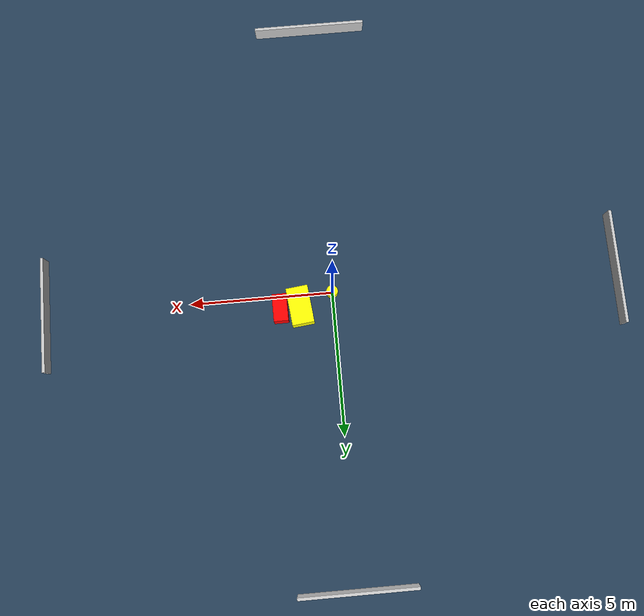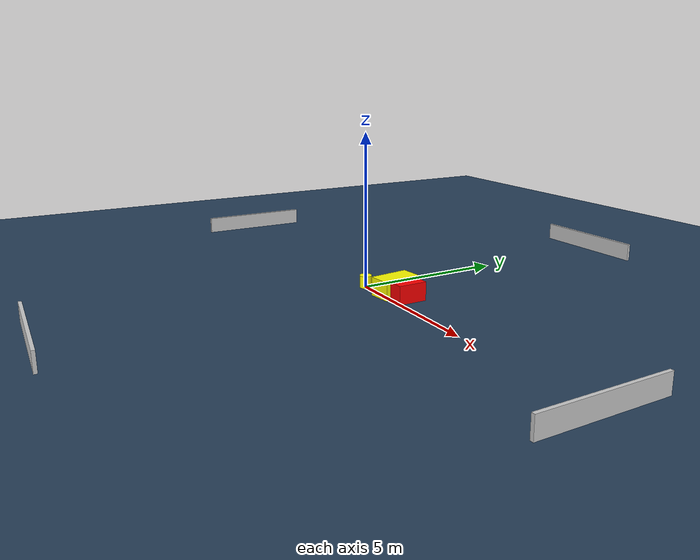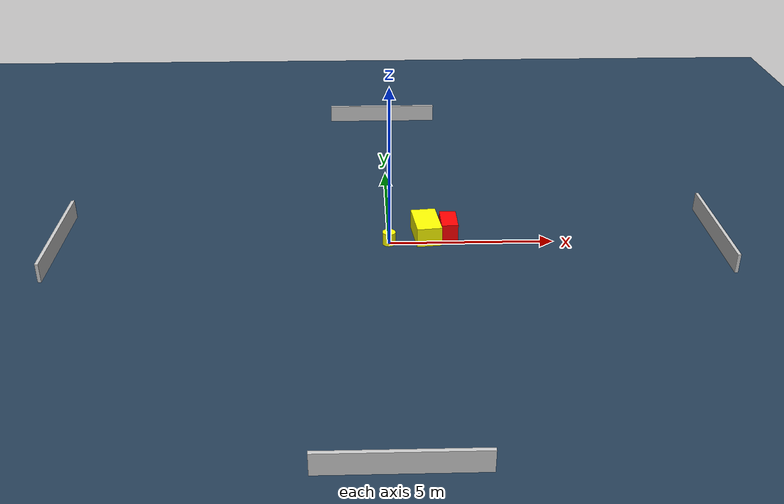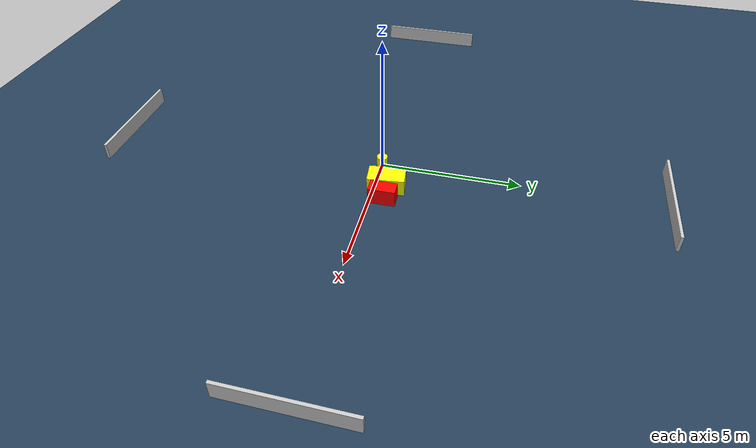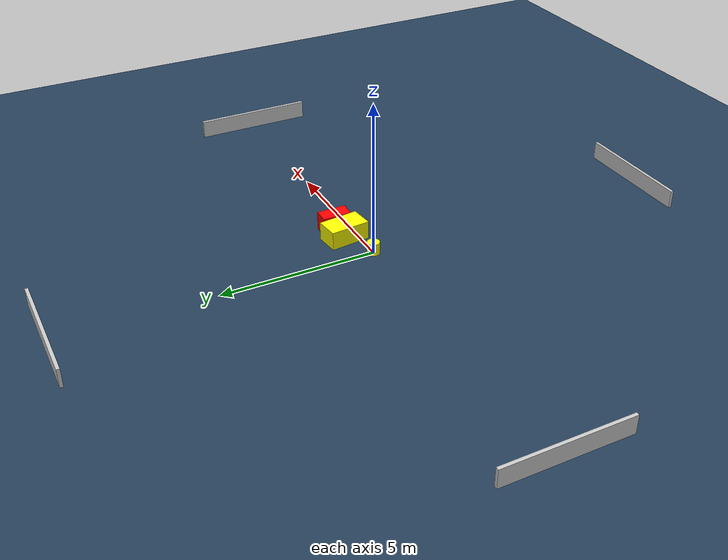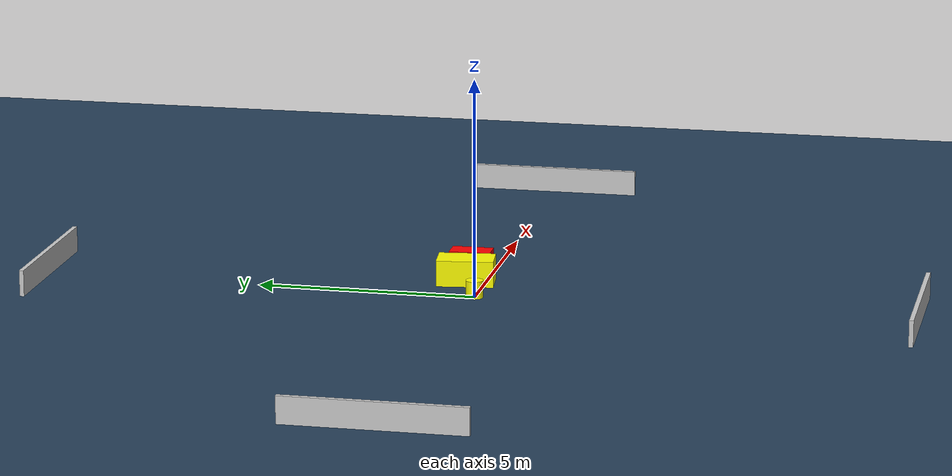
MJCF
<?xml version="1.0" ?>
<mujoco model="generated_environment">
  <option timestep="0.01" integrator="RK4" cone="elliptic"/>
  <default>
    <geom density="1"/>
  </default>
  <asset>
    <texture builtin="gradient" height="3072" name="skybox" rgb1="0.3 0.5 0.7" rgb2="0 0 0" type="skybox" width="512"/>
    <texture builtin="checker" height="300" name="groundplane" rgb1="0.2 0.3 0.4" rgb2="0.1 0.2 0.3" type="2d" width="300"/>
    <material name="groundplane" reflectance="0.2" texrepeat="5 5" texture="groundplane"/>
  </asset>
  <worldbody>
    <light dir="0 0 -1" directional="true" pos="0 0 1.5"/>
    <geom condim="3" friction="0.5 0.005 0.001" material="groundplane" name="floor" pos="0 0 0" size="0 0 0.05" type="plane"/>
    <body name="walls">
      <geom name="wall_1" condim="4" pos="-10.0 0.0 0.3" rgba="0.800000011920929 0.800000011920929 0.800000011920929 1.0" size="0.05 2.0 0.3" type="box"/>
      <geom name="wall_2" condim="4" pos="10.0 0.0 0.3" rgba="0.800000011920929 0.800000011920929 0.800000011920929 1.0" size="0.05 2.0 0.3" type="box"/>
      <geom name="wall_3" condim="4" pos="0.0 -10.0 0.3" rgba="0.800000011920929 0.800000011920929 0.800000011920929 1.0" size="2.0 0.05 0.3" type="box"/>
      <geom name="wall_4" condim="4" pos="0.0 10.0 0.3" rgba="0.800000011920929 0.800000011920929 0.800000011920929 1.0" size="2.0 0.05 0.3" type="box"/>
    </body>
    <body name="robot">
      <joint name="joint_x" type="slide" pos="0 0 0" axis="1 0 0"/>
      <joint name="joint_y" type="slide" pos="0 0 0" axis="0 1 0"/>
      <geom name="robot" type="cylinder" pos="0.0 0.0 0.2" size="0.2 0.2 0.0" mass="5.0" friction="1.0 0.005 0.0001" condim="4" rgba="1.0 1.0 0.0 1.0"/>
    </body>
    <body name="obstacle_1_movable">
      <geom name="obstacle_1_movable" condim="4" pos="1.1534365082389588 0.43525660119338894 0.3" euler="0 0 6.40159486021961" friction="0.0 0.005 0.001" rgba="1.0 1.0 0.0 1.0" size="0.3838991493449396 0.6533586764760131 0.3" type="box" mass="0.1"/>
      <joint type="free"/>
    </body>
    <body name="obstacle_2_static">
      <geom name="obstacle_2_static" condim="4" pos="1.8428108192965644 0.4558715833958749 0.3" euler="0 0 0.6006005023558547" friction="0.0 0.005 0.001" rgba="1.0 0.0 0.0 1.0" size="0.25380409634134216 0.4749601597427303 0.3" type="box"/>
    </body>
  </worldbody>
  <actuator>
    <motor name="actuator_x" joint="joint_x" gear="1" ctrlrange="-1 1"/>
    <motor name="actuator_y" joint="joint_y" gear="1" ctrlrange="-1 1"/>
  </actuator>
</mujoco>
